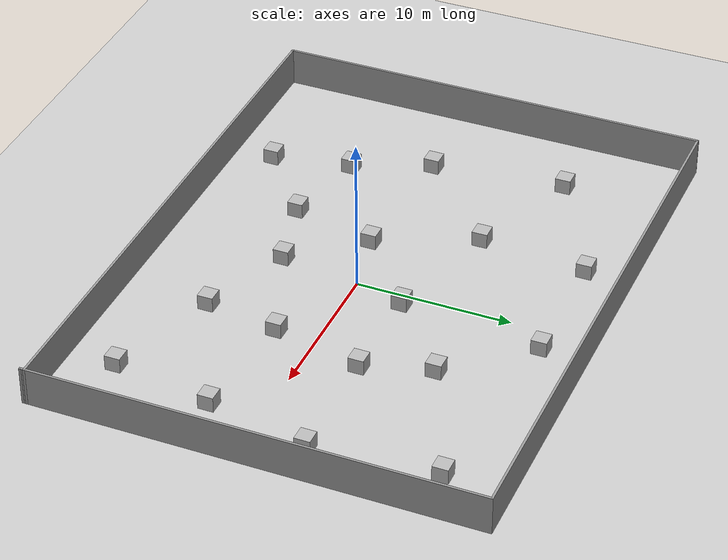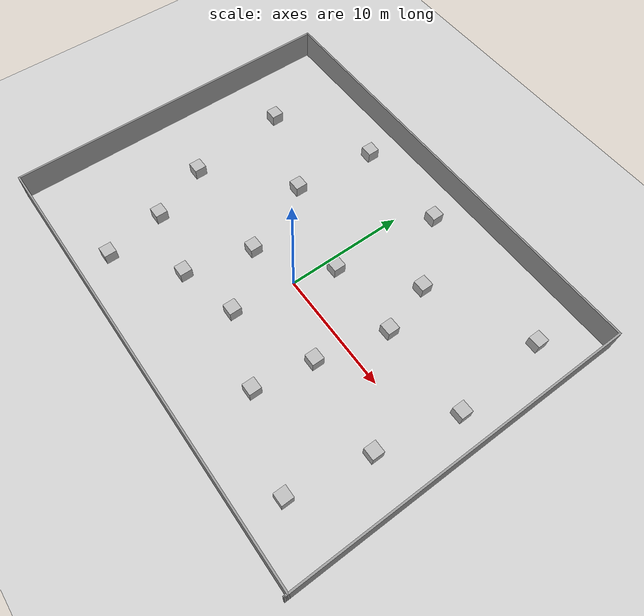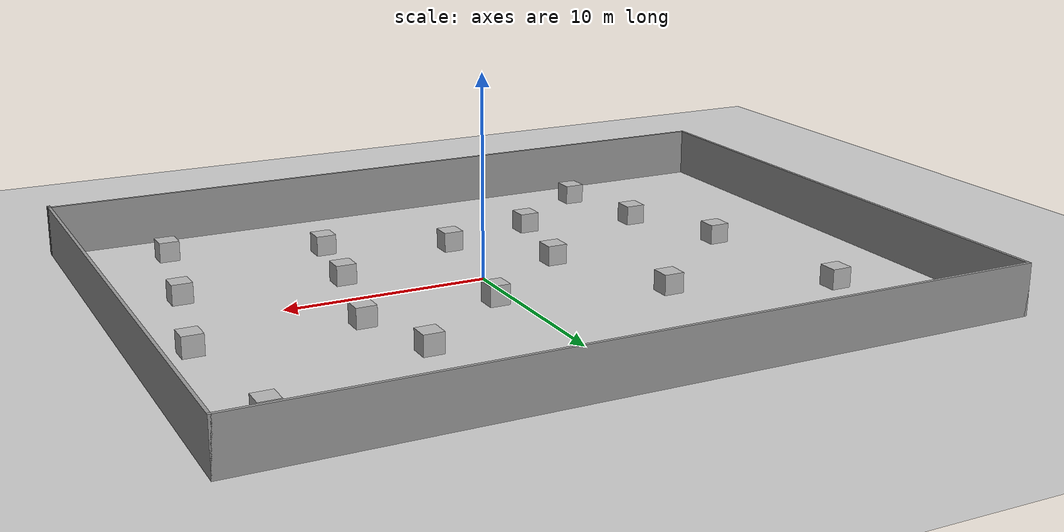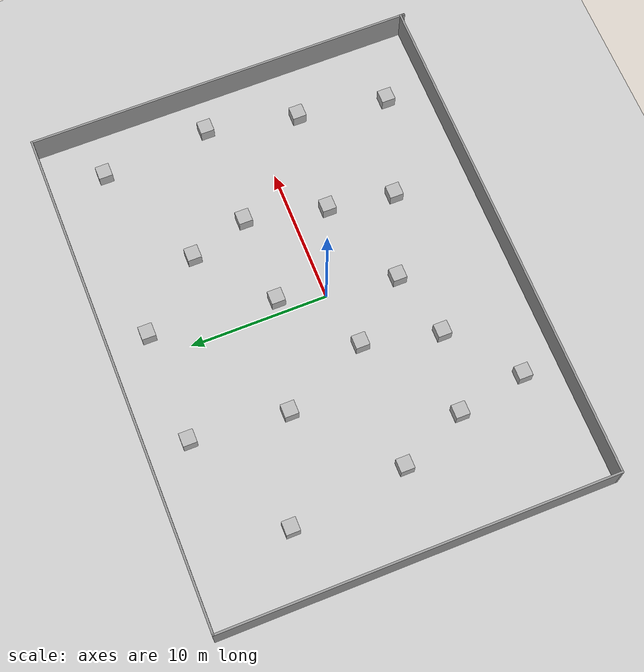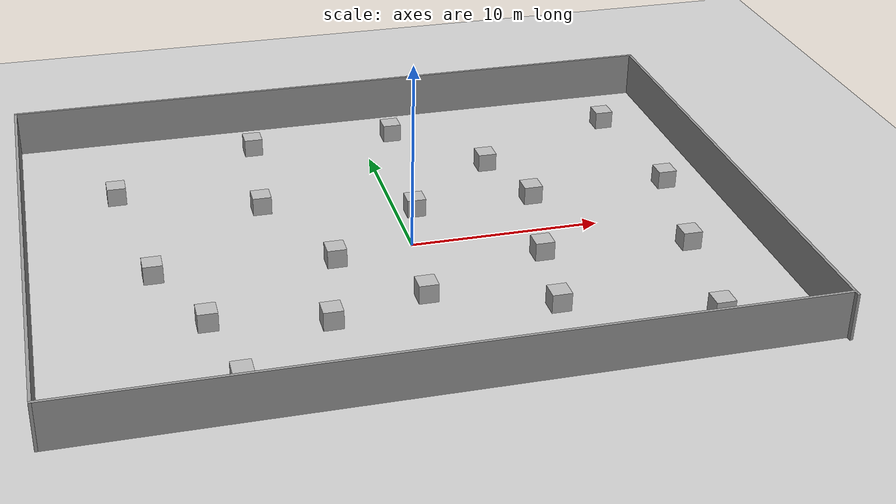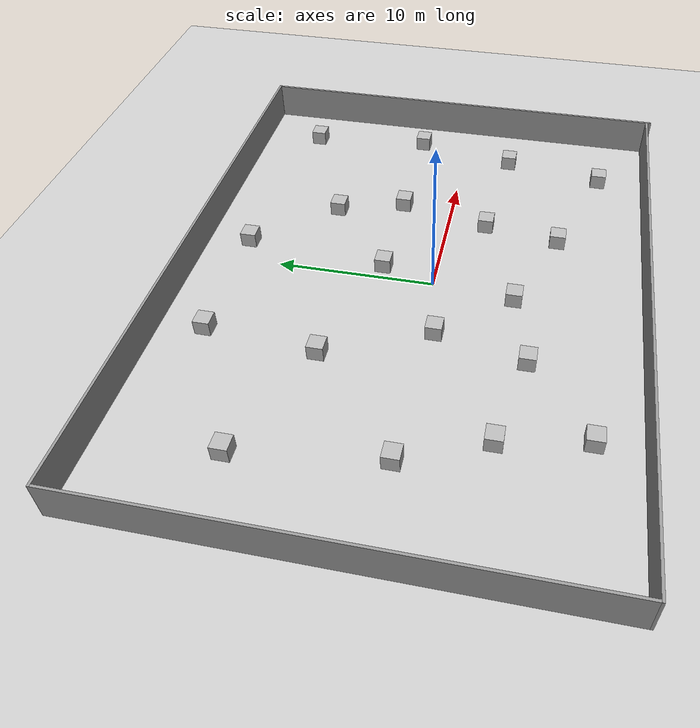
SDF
<sdf version="1.7">
 <world name="default">
  <light name="sun" type="directional">
   <pose>0 0 10 0 -0 0</pose>
   <diffuse>0.8 0.8 0.8 1</diffuse>
   <specular>0.2 0.2 0.2 1</specular>
   <attenuation>
    <range>1000</range>
    <constant>0.9</constant>
    <linear>0.01</linear>
    <quadratic>0.001</quadratic>
   </attenuation>
   <direction>-0.5 0.1 -0.9</direction>
   <spot><inner_angle>0</inner_angle><outer_angle>0</outer_angle><falloff>0</falloff></spot>
  </light>
  <model name="ground_plane">
   <static>1</static>
   <link name="link">
    <collision name="collision">
     <geometry><plane><normal>0 0 1</normal><size>100 100</size></plane></geometry>
     <surface><friction><ode><mu>100</mu><mu2>50</mu2></ode></friction></surface>
    </collision>
    <visual name="visual">
     <cast_shadows>0</cast_shadows>
     <geometry><plane><normal>0 0 1</normal><size>100 100</size></plane></geometry>
     <material>
      <script><uri>file://media/materials/scripts/gazebo.material</uri><name>Gazebo/Grey</name></script>
     </material>
    </visual>
   </link>
  </model>
  <gravity>0 0 -9.8</gravity>
  <magnetic_field>6e-06 2.3e-05 -4.2e-05</magnetic_field>
  <atmosphere type="adiabatic"/>
  <physics type="ode">
   <max_step_size>0.001</max_step_size>
   <real_time_factor>1</real_time_factor>
   <real_time_update_rate>1000</real_time_update_rate>
  </physics>
  <scene><ambient>0.4 0.4 0.4 1</ambient><background>0.7 0.7 0.7 1</background><shadows>1</shadows></scene>
  <spherical_coordinates>
   <surface_model>EARTH_WGS84</surface_model>
   <latitude_deg>0</latitude_deg>
   <longitude_deg>0</longitude_deg>
   <elevation>0</elevation>
   <heading_deg>0</heading_deg>
  </spherical_coordinates>
  <model name="test_box">
   <pose>-5.5071 -6.36349 0.5 0 0 -3e-06</pose>
   <link name="link">
    <collision name="collision"><geometry><box><size>1 1 1</size></box></geometry></collision>
    <visual name="visual"><geometry><box><size>1 1 1</size></box></geometry></visual>
    <inertial>
     <inertia><ixx>1</ixx><ixy>0</ixy><ixz>0</ixz><iyy>1</iyy><iyz>0</iyz><izz>1</izz></inertia>
     <mass>1</mass>
    </inertial>
   </link>
  </model>
  <model name="test_box_0">
   <pose>-0.570021 -5.10952 0.5 0 -0 0</pose>
   <link name="link">
    <collision name="collision"><geometry><box><size>1 1 1</size></box></geometry></collision>
    <visual name="visual"><geometry><box><size>1 1 1</size></box></geometry></visual>
    <inertial>
     <inertia><ixx>1</ixx><ixy>0</ixy><ixz>0</ixz><iyy>1</iyy><iyz>0</iyz><izz>1</izz></inertia>
     <mass>1</mass>
    </inertial>
   </link>
  </model>
  <model name="test_box_1">
   <pose>5.40765 -7.36351 0.5 0 -0 -2e-06</pose>
   <link name="link">
    <collision name="collision"><geometry><box><size>1 1 1</size></box></geometry></collision>
    <visual name="visual"><geometry><box><size>1 1 1</size></box></geometry></visual>
    <inertial>
     <inertia><ixx>1</ixx><ixy>0</ixy><ixz>0</ixz><iyy>1</iyy><iyz>0</iyz><izz>1</izz></inertia>
     <mass>1</mass>
    </inertial>
   </link>
  </model>
  <model name="test_box_2">
   <pose>6.16516 -2.53466 0.5 0 -0 0</pose>
   <link name="link">
    <collision name="collision"><geometry><box><size>1 1 1</size></box></geometry></collision>
    <visual name="visual"><geometry><box><size>1 1 1</size></box></geometry></visual>
    <inertial>
     <inertia><ixx>1</ixx><ixy>0</ixy><ixz>0</ixz><iyy>1</iyy><iyz>0</iyz><izz>1</izz></inertia>
     <mass>1</mass>
    </inertial>
   </link>
  </model>
  <model name="test_box_3">
   <pose>-4.20423 -0.823818 0.5 0 -0 0</pose>
   <link name="link">
    <collision name="collision"><geometry><box><size>1 1 1</size></box></geometry></collision>
    <visual name="visual"><geometry><box><size>1 1 1</size></box></geometry></visual>
    <inertial>
     <inertia><ixx>1</ixx><ixy>0</ixy><ixz>0</ixz><iyy>1</iyy><iyz>0</iyz><izz>1</izz></inertia>
     <mass>1</mass>
    </inertial>
   </link>
  </model>
  <model name="test_box_4">
   <pose>0.960293 3.34727 0.5 0 -0 0</pose>
   <link name="link">
    <collision name="collision"><geometry><box><size>1 1 1</size></box></geometry></collision>
    <visual name="visual"><geometry><box><size>1 1 1</size></box></geometry></visual>
    <inertial>
     <inertia><ixx>1</ixx><ixy>0</ixy><ixz>0</ixz><iyy>1</iyy><iyz>0</iyz><izz>1</izz></inertia>
     <mass>1</mass>
    </inertial>
   </link>
  </model>
  <model name="test_box_5">
   <pose>-6.98199 5.4695 0.5 0 -0 0</pose>
   <link name="link">
    <collision name="collision"><geometry><box><size>1 1 1</size></box></geometry></collision>
    <visual name="visual"><geometry><box><size>1 1 1</size></box></geometry></visual>
    <inertial>
     <inertia><ixx>1</ixx><ixy>0</ixy><ixz>0</ixz><iyy>1</iyy><iyz>0</iyz><izz>1</izz></inertia>
     <mass>1</mass>
    </inertial>
   </link>
  </model>
  <model name="test_box_6">
   <pose>6.13328 7.6237 0.5 0 -0 0</pose>
   <link name="link">
    <collision name="collision"><geometry><box><size>1 1 1</size></box></geometry></collision>
    <visual name="visual"><geometry><box><size>1 1 1</size></box></geometry></visual>
    <inertial>
     <inertia><ixx>1</ixx><ixy>0</ixy><ixz>0</ixz><iyy>1</iyy><iyz>0</iyz><izz>1</izz></inertia>
     <mass>1</mass>
    </inertial>
   </link>
  </model>
  <model name="test_box_7">
   <pose>7.44529 3.31124 0.5 0 -0 0</pose>
   <link name="link">
    <collision name="collision"><geometry><box><size>1 1 1</size></box></geometry></collision>
    <visual name="visual"><geometry><box><size>1 1 1</size></box></geometry></visual>
    <inertial>
     <inertia><ixx>1</ixx><ixy>0</ixy><ixz>0</ixz><iyy>1</iyy><iyz>0</iyz><izz>1</izz></inertia>
     <mass>1</mass>
    </inertial>
   </link>
  </model>
  <model name="rectangle_wall">
   <pose>3 7 0 0 -0 0</pose>
   <link name="Wall_17">
    <collision name="Wall_17_Collision">
     <geometry><box><size>37.25 0.15 2.5</size></box></geometry>
     <pose>0 0 1.25 0 -0 0</pose>
    </collision>
    <visual name="Wall_17_Visual">
     <pose>0 0 1.25 0 -0 0</pose>
     <geometry><box><size>37.25 0.15 2.5</size></box></geometry>
     <material>
      <script><uri>file://media/materials/scripts/gazebo.material</uri><name>Gazebo/Grey</name></script>
      <ambient>1 1 1 1</ambient>
     </material>
     <meta><layer>0</layer></meta>
    </visual>
    <pose>-3.85349 -19.9385 0 0 -0 3.14159</pose>
   </link>
   <link name="Wall_18">
    <collision name="Wall_18_Collision">
     <geometry><box><size>28.5 0.15 2.5</size></box></geometry>
     <pose>0 0 1.25 0 -0 0</pose>
    </collision>
    <visual name="Wall_18_Visual">
     <pose>0 0 1.25 0 -0 0</pose>
     <geometry><box><size>28.5 0.15 2.5</size></box></geometry>
     <material>
      <script><uri>file://media/materials/scripts/gazebo.material</uri><name>Gazebo/Grey</name></script>
      <ambient>1 1 1 1</ambient>
     </material>
     <meta><layer>0</layer></meta>
    </visual>
    <pose>-22.4035 -5.76346 0 0 -0 1.5708</pose>
   </link>
   <link name="Wall_19">
    <collision name="Wall_19_Collision">
     <geometry><box><size>37.25 0.15 2.5</size></box></geometry>
     <pose>0 0 1.25 0 -0 0</pose>
    </collision>
    <visual name="Wall_19_Visual">
     <pose>0 0 1.25 0 -0 0</pose>
     <geometry><box><size>37.25 0.15 2.5</size></box></geometry>
     <material>
      <script><uri>file://media/materials/scripts/gazebo.material</uri><name>Gazebo/Grey</name></script>
      <ambient>1 1 1 1</ambient>
     </material>
     <meta><layer>0</layer></meta>
    </visual>
    <pose>-3.85349 8.41154 0 0 -0 0</pose>
   </link>
   <link name="Wall_20">
    <collision name="Wall_20_Collision">
     <geometry><box><size>28.75 0.15 2.5</size></box></geometry>
     <pose>0 0 1.25 0 -0 0</pose>
    </collision>
    <visual name="Wall_20_Visual">
     <pose>0 0 1.25 0 -0 0</pose>
     <geometry><box><size>28.75 0.15 2.5</size></box></geometry>
     <material>
      <script><uri>file://media/materials/scripts/gazebo.material</uri><name>Gazebo/Grey</name></script>
      <ambient>1 1 1 1</ambient>
     </material>
     <meta><layer>0</layer></meta>
    </visual>
    <pose>14.6965 -5.88846 0 0 -0 -1.5708</pose>
   </link>
   <link name="Wall_21">
    <collision name="Wall_21_Collision">
     <geometry><box><size>0.15 0.15 2.5</size></box></geometry>
     <pose>0 0 1.25 0 -0 0</pose>
    </collision>
    <visual name="Wall_21_Visual">
     <pose>0 0 1.25 0 -0 0</pose>
     <geometry><box><size>0.15 0.15 2.5</size></box></geometry>
     <material>
      <script><uri>file://media/materials/scripts/gazebo.material</uri><name>Gazebo/Grey</name></script>
      <ambient>1 1 1 1</ambient>
     </material>
     <meta><layer>0</layer></meta>
    </visual>
    <pose>14.6965 -20.1885 0 0 -0 0</pose>
   </link>
   <static>1</static>
  </model>
  <model name="test_box_8">
   <pose>-11.2592 -5.17503 0.5 0 -0 0</pose>
   <link name="link">
    <collision name="collision"><geometry><box><size>1 1 1</size></box></geometry></collision>
    <visual name="visual"><geometry><box><size>1 1 1</size></box></geometry></visual>
    <inertial>
     <inertia><ixx>1</ixx><ixy>0</ixy><ixz>0</ixz><iyy>1</iyy><iyz>0</iyz><izz>1</izz></inertia>
     <mass>1</mass>
    </inertial>
   </link>
  </model>
  <model name="test_box_9">
   <pose>-13.331 -0.275904 0.5 0 -0 0</pose>
   <link name="link">
    <collision name="collision"><geometry><box><size>1 1 1</size></box></geometry></collision>
    <visual name="visual"><geometry><box><size>1 1 1</size></box></geometry></visual>
    <inertial>
     <inertia><ixx>1</ixx><ixy>0</ixy><ixz>0</ixz><iyy>1</iyy><iyz>0</iyz><izz>1</izz></inertia>
     <mass>1</mass>
    </inertial>
   </link>
  </model>
  <model name="test_box_10">
   <pose>-14.4421 8.28452 0.5 0 -0 0</pose>
   <link name="link">
    <collision name="collision"><geometry><box><size>1 1 1</size></box></geometry></collision>
    <visual name="visual"><geometry><box><size>1 1 1</size></box></geometry></visual>
    <inertial>
     <inertia><ixx>1</ixx><ixy>0</ixy><ixz>0</ixz><iyy>1</iyy><iyz>0</iyz><izz>1</izz></inertia>
     <mass>1</mass>
    </inertial>
   </link>
  </model>
  <model name="test_box_11">
   <pose>-6.3546 12.4911 0.5 0 -0 0</pose>
   <link name="link">
    <collision name="collision"><geometry><box><size>1 1 1</size></box></geometry></collision>
    <visual name="visual"><geometry><box><size>1 1 1</size></box></geometry></visual>
    <inertial>
     <inertia><ixx>1</ixx><ixy>0</ixy><ixz>0</ixz><iyy>1</iyy><iyz>0</iyz><izz>1</izz></inertia>
     <mass>1</mass>
    </inertial>
   </link>
  </model>
  <model name="test_box_12">
   <pose>1.7929 12.5278 0.5 0 -0 0</pose>
   <link name="link">
    <collision name="collision"><geometry><box><size>1 1 1</size></box></geometry></collision>
    <visual name="visual"><geometry><box><size>1 1 1</size></box></geometry></visual>
    <inertial>
     <inertia><ixx>1</ixx><ixy>0</ixy><ixz>0</ixz><iyy>1</iyy><iyz>0</iyz><izz>1</izz></inertia>
     <mass>1</mass>
    </inertial>
   </link>
  </model>
  <model name="test_box_13">
   <pose>14.4442 11.3466 0.5 0 -0 0</pose>
   <link name="link">
    <collision name="collision"><geometry><box><size>1 1 1</size></box></geometry></collision>
    <visual name="visual"><geometry><box><size>1 1 1</size></box></geometry></visual>
    <inertial>
     <inertia><ixx>1</ixx><ixy>0</ixy><ixz>0</ixz><iyy>1</iyy><iyz>0</iyz><izz>1</izz></inertia>
     <mass>1</mass>
    </inertial>
   </link>
  </model>
  <model name="test_box_14">
   <pose>15.1739 3.35874 0.5 0 -0 0</pose>
   <link name="link">
    <collision name="collision"><geometry><box><size>1 1 1</size></box></geometry></collision>
    <visual name="visual"><geometry><box><size>1 1 1</size></box></geometry></visual>
    <inertial>
     <inertia><ixx>1</ixx><ixy>0</ixy><ixz>0</ixz><iyy>1</iyy><iyz>0</iyz><izz>1</izz></inertia>
     <mass>1</mass>
    </inertial>
   </link>
  </model>
  <model name="test_box_15">
   <pose>13.8322 -3.27418 0.5 0 -0 0</pose>
   <link name="link">
    <collision name="collision"><geometry><box><size>1 1 1</size></box></geometry></collision>
    <visual name="visual"><geometry><box><size>1 1 1</size></box></geometry></visual>
    <inertial>
     <inertia><ixx>1</ixx><ixy>0</ixy><ixz>0</ixz><iyy>1</iyy><iyz>0</iyz><izz>1</izz></inertia>
     <mass>1</mass>
    </inertial>
   </link>
  </model>
  <model name="test_box_16">
   <pose>-10.319 -10.2382 0.5 0 -0 0</pose>
   <link name="link">
    <collision name="collision"><geometry><box><size>1 1 1</size></box></geometry></collision>
    <visual name="visual"><geometry><box><size>1 1 1</size></box></geometry></visual>
    <inertial>
     <inertia><ixx>1</ixx><ixy>0</ixy><ixz>0</ixz><iyy>1</iyy><iyz>0</iyz><izz>1</izz></inertia>
     <mass>1</mass>
    </inertial>
   </link>
  </model>
  <model name="test_box_17">
   <pose>12.7229 -9.79652 0.5 0 -0 0</pose>
   <link name="link">
    <collision name="collision"><geometry><box><size>1 1 1</size></box></geometry></collision>
    <visual name="visual"><geometry><box><size>1 1 1</size></box></geometry></visual>
    <inertial>
     <inertia><ixx>1</ixx><ixy>0</ixy><ixz>0</ixz><iyy>1</iyy><iyz>0</iyz><izz>1</izz></inertia>
     <mass>1</mass>
    </inertial>
   </link>
  </model>
 </world>
</sdf>
